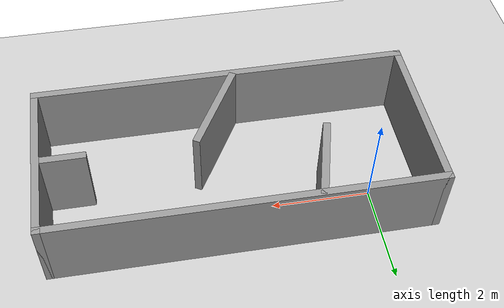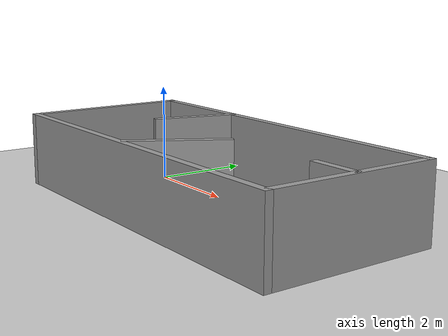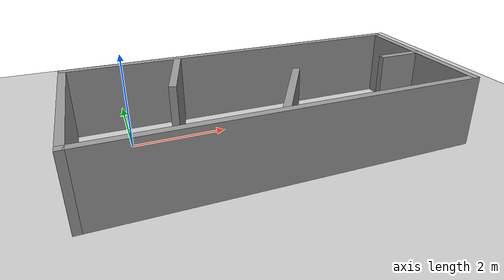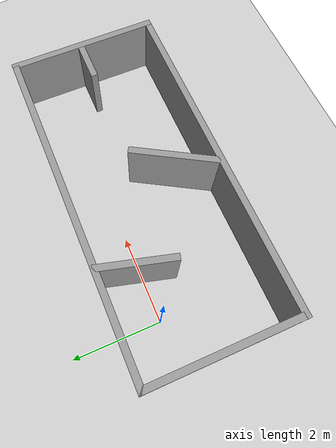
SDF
<sdf version="1.7">
 <world name="default">
  <light name="sun" type="directional">
   <pose>0 0 10 0 -0 0</pose>
   <diffuse>0.8 0.8 0.8 1</diffuse>
   <specular>0.2 0.2 0.2 1</specular>
   <attenuation>
    <range>1000</range>
    <constant>0.9</constant>
    <linear>0.01</linear>
    <quadratic>0.001</quadratic>
   </attenuation>
   <direction>-0.5 0.1 -0.9</direction>
   <spot><inner_angle>0</inner_angle><outer_angle>0</outer_angle><falloff>0</falloff></spot>
  </light>
  <model name="ground_plane">
   <static>1</static>
   <link name="link">
    <collision name="collision">
     <geometry><plane><normal>0 0 1</normal><size>100 100</size></plane></geometry>
     <surface>
      <contact><collide_bitmask>65535</collide_bitmask></contact>
      <friction><ode><mu>100</mu><mu2>50</mu2></ode></friction>
     </surface>
    </collision>
    <visual name="visual">
     <cast_shadows>0</cast_shadows>
     <geometry><plane><normal>0 0 1</normal><size>100 100</size></plane></geometry>
     <material>
      <script><uri>file://media/materials/scripts/gazebo.material</uri><name>Gazebo/Grey</name></script>
     </material>
    </visual>
   </link>
  </model>
  <gravity>0 0 -9.8</gravity>
  <magnetic_field>6e-06 2.3e-05 -4.2e-05</magnetic_field>
  <atmosphere type="adiabatic"/>
  <physics type="ode">
   <max_step_size>0.001</max_step_size>
   <real_time_factor>1</real_time_factor>
   <real_time_update_rate>1000</real_time_update_rate>
  </physics>
  <scene><ambient>0.4 0.4 0.4 1</ambient><background>0.7 0.7 0.7 1</background><shadows>1</shadows></scene>
  <audio><device>default</device></audio>
  <spherical_coordinates>
   <surface_model>EARTH_WGS84</surface_model>
   <latitude_deg>0</latitude_deg>
   <longitude_deg>0</longitude_deg>
   <elevation>0</elevation>
   <heading_deg>0</heading_deg>
  </spherical_coordinates>
  <model name="Untitled">
   <pose>2.68281 -0.253786 0 0 -0 0</pose>
   <link name="Wall_0">
    <collision name="Wall_0_Collision">
     <geometry><box><size>7.75 0.15 1.5</size></box></geometry>
     <pose>0 0 0.75 0 -0 0</pose>
    </collision>
    <visual name="Wall_0_Visual">
     <pose>0 0 0.75 0 -0 0</pose>
     <geometry><box><size>7.75 0.15 1.5</size></box></geometry>
     <material>
      <script><uri>file://media/materials/scripts/gazebo.material</uri><name>Gazebo/Grey</name></script>
      <ambient>1 1 1 1</ambient>
     </material>
     <meta><layer>0</layer></meta>
    </visual>
    <pose>-0 1.1625 0 0 -0 0</pose>
   </link>
   <link name="Wall_1">
    <collision name="Wall_1_Collision">
     <geometry><box><size>3.5 0.15 1.5</size></box></geometry>
     <pose>0 0 0.75 0 -0 0</pose>
    </collision>
    <visual name="Wall_1_Visual">
     <pose>0 0 0.75 0 -0 0</pose>
     <geometry><box><size>3.5 0.15 1.5</size></box></geometry>
     <material>
      <script><uri>file://media/materials/scripts/gazebo.material</uri><name>Gazebo/Grey</name></script>
      <ambient>1 1 1 1</ambient>
     </material>
     <meta><layer>0</layer></meta>
    </visual>
    <pose>3.8 -0.5125 0 0 -0 -1.5708</pose>
   </link>
   <link name="Wall_2">
    <collision name="Wall_2_Collision">
     <geometry><box><size>7.75 0.15 1.5</size></box></geometry>
     <pose>0 0 0.75 0 -0 0</pose>
    </collision>
    <visual name="Wall_2_Visual">
     <pose>0 0 0.75 0 -0 0</pose>
     <geometry><box><size>7.75 0.15 1.5</size></box></geometry>
     <material>
      <script><uri>file://media/materials/scripts/gazebo.material</uri><name>Gazebo/Grey</name></script>
      <ambient>1 1 1 1</ambient>
     </material>
     <meta><layer>0</layer></meta>
    </visual>
    <pose>-0 -2.1875 0 0 -0 3.14159</pose>
   </link>
   <link name="Wall_3">
    <collision name="Wall_3_Collision">
     <geometry><box><size>3.5 0.15 1.5</size></box></geometry>
     <pose>0 0 0.75 0 -0 0</pose>
    </collision>
    <visual name="Wall_3_Visual">
     <pose>0 0 0.75 0 -0 0</pose>
     <geometry><box><size>3.5 0.15 1.5</size></box></geometry>
     <material>
      <script><uri>file://media/materials/scripts/gazebo.material</uri><name>Gazebo/Grey</name></script>
      <ambient>1 1 1 1</ambient>
     </material>
     <meta><layer>0</layer></meta>
    </visual>
    <pose>-3.8 -0.5125 0 0 -0 1.5708</pose>
   </link>
   <link name="Wall_5">
    <collision name="Wall_5_Collision">
     <geometry><box><size>1.75 0.15 1.5</size></box></geometry>
     <pose>0 0 0.75 0 -0 0</pose>
    </collision>
    <visual name="Wall_5_Visual">
     <pose>0 0 0.75 0 -0 0</pose>
     <geometry><box><size>1.75 0.15 1.5</size></box></geometry>
     <material>
      <script><uri>file://media/materials/scripts/gazebo.material</uri><name>Gazebo/Grey</name></script>
      <ambient>1 1 1 1</ambient>
     </material>
     <meta><layer>0</layer></meta>
    </visual>
    <pose>-1.637 0.36 0 0 -0 -1.83261</pose>
   </link>
   <link name="Wall_7">
    <collision name="Wall_7_Collision">
     <geometry><box><size>2 0.15 1.5</size></box></geometry>
     <pose>0 0 0.75 0 -0 0</pose>
    </collision>
    <visual name="Wall_7_Visual">
     <pose>0 0 0.75 0 -0 0</pose>
     <geometry><box><size>2 0.15 1.5</size></box></geometry>
     <material>
      <script><uri>file://media/materials/scripts/gazebo.material</uri><name>Gazebo/Grey</name></script>
      <ambient>1 1 1 1</ambient>
     </material>
     <meta><layer>0</layer></meta>
    </visual>
    <pose>0.2325 -1.2965 0 0 -0 1.04716</pose>
   </link>
   <link name="Wall_9">
    <collision name="Wall_9_Collision">
     <geometry><box><size>1 0.15 1.5</size></box></geometry>
     <pose>0 0 0.75 0 -0 0</pose>
    </collision>
    <visual name="Wall_9_Visual">
     <pose>0 0 0.75 0 -0 0</pose>
     <geometry><box><size>1 0.15 1.5</size></box></geometry>
     <material>
      <script><uri>file://media/materials/scripts/gazebo.material</uri><name>Gazebo/Grey</name></script>
      <ambient>1 1 1 1</ambient>
     </material>
     <meta><layer>0</layer></meta>
    </visual>
    <pose>3.335 -0.4475 0 0 -0 3.14159</pose>
   </link>
   <static>1</static>
  </model>
 </world>
</sdf>
